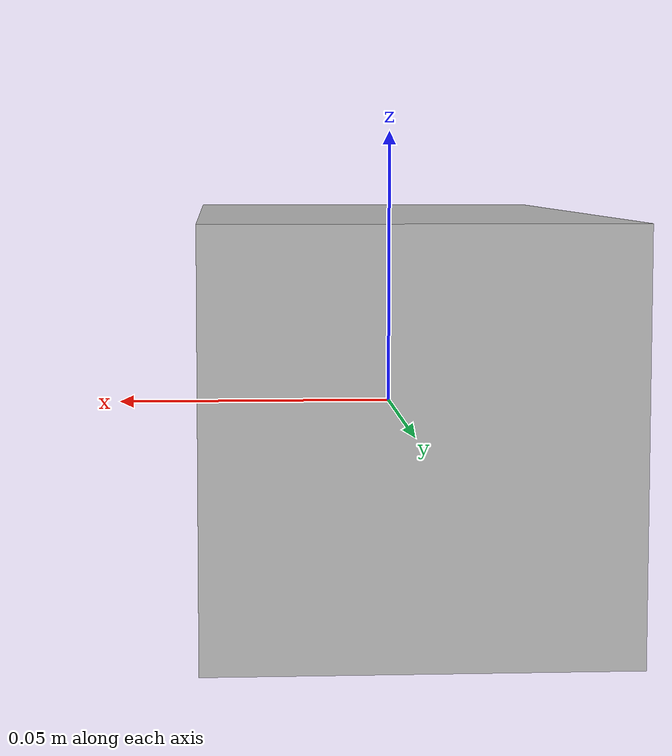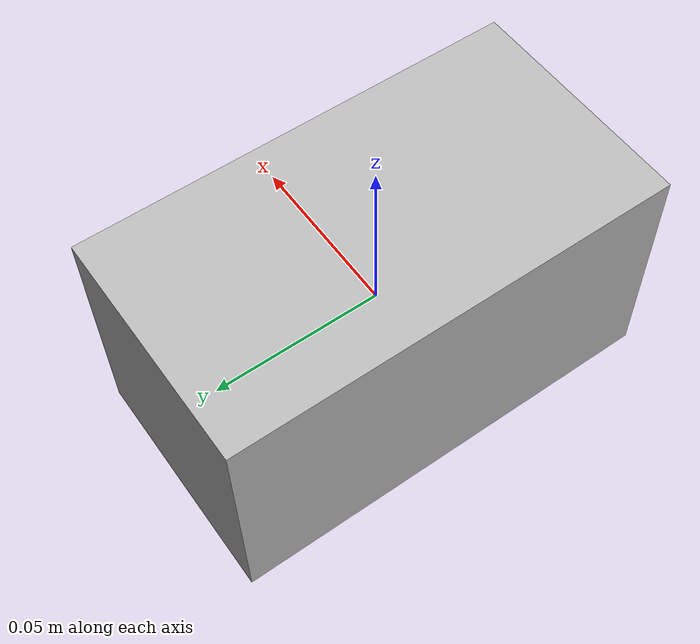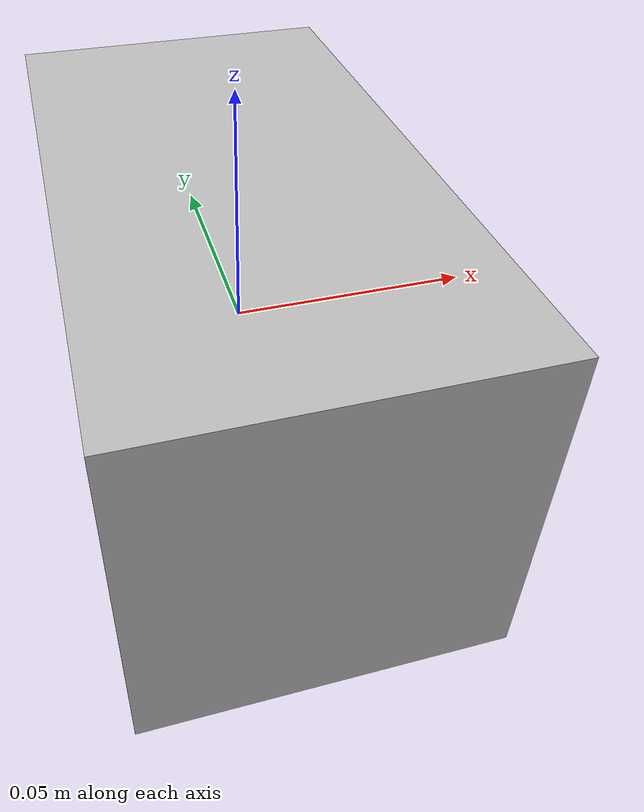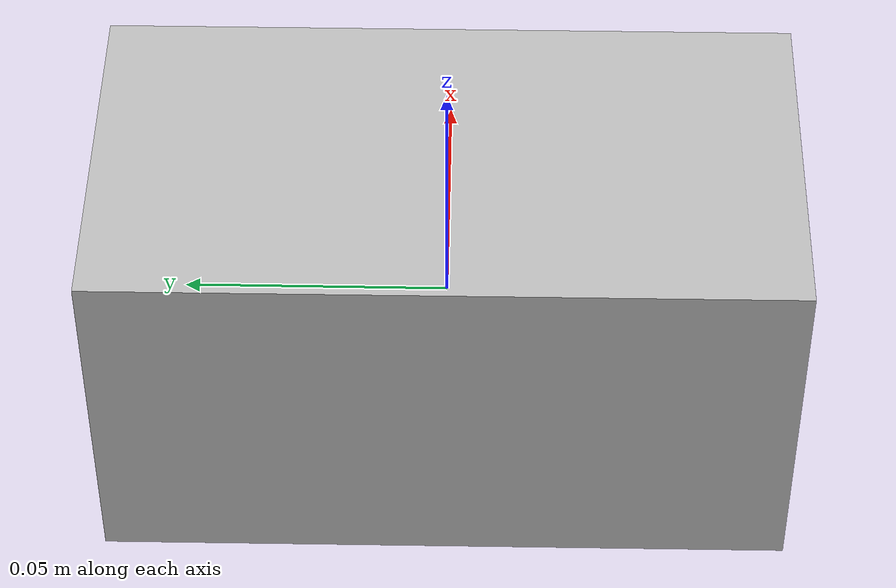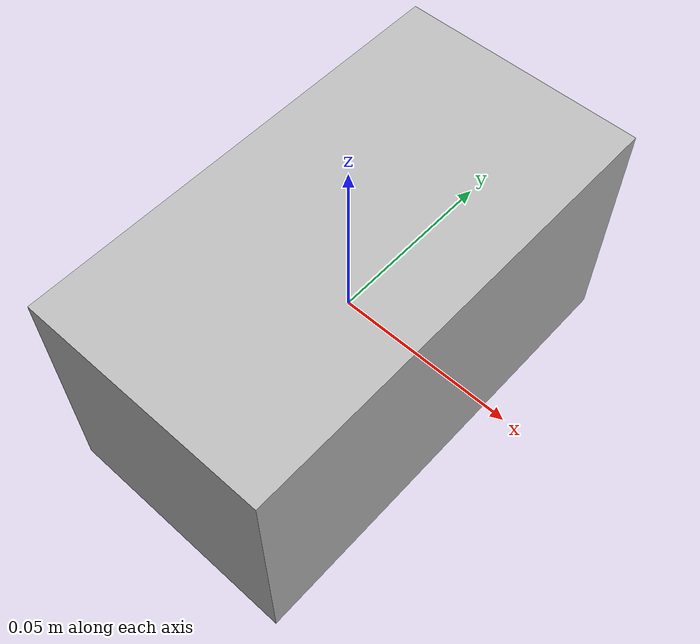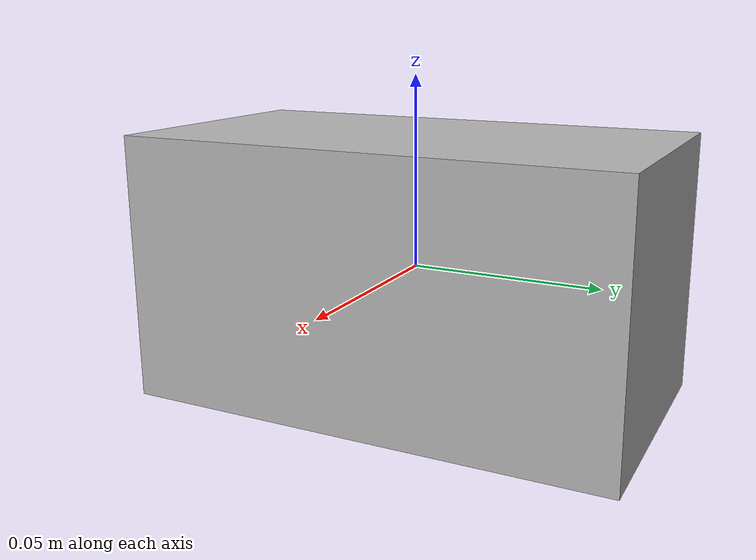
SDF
<?xml version='1.0'?>
<sdf version='1.6'>
  <model name='AH_thee_bosvruchten_tag36_11_00047'>
    <static>0</static>
    <link name='link_0'>

      <inertial>
        <mass>0.1</mass>
        <inertia>
          <ixx>1.4e-03</ixx>
          <ixy>0</ixy>
          <ixz>0</ixz>
          <iyy>1.4e-03</iyy>
          <iyz>0</iyz>
          <izz>2.8e-03</izz>
        </inertia>
      </inertial>

      <pose frame=''>-0 0 0 0 -0 0</pose>

      <visual name='visual'>
        <pose frame=''>0 0 0 0 -0 0</pose>
        <geometry>
          <mesh>
            <uri>model://AH_thee_bosvruchten/AH_thee_bosvruchten_tag36_11_00047/AH_thee_bosvruchten_tag36_11_00047.dae</uri>
            <scale>1 1 1</scale>
          </mesh>
        </geometry>
        <transparency>0</transparency>
        <cast_shadows>1</cast_shadows>
      </visual>

      <collision name='collision'>
        <laser_retro>0</laser_retro>
        <max_contacts>10</max_contacts>
        <pose frame=''>0 0 0 0 -0 0</pose>
        <geometry>
          <mesh>
            <uri>model://AH_thee_bosvruchten/AH_thee_bosvruchten_tag36_11_00047/AH_thee_bosvruchten_tag36_11_00047.dae</uri>
            <scale>1 1 1</scale>
          </mesh>
        </geometry>
        <surface>
          <friction>
            <ode>
              <mu>1</mu>
              <mu2>1</mu2>
              <fdir1>0 0 0</fdir1>
              <slip1>0</slip1>
              <slip2>0</slip2>
            </ode>
            <torsional>
              <coefficient>1</coefficient>
              <patch_radius>0</patch_radius>
              <surface_radius>0</surface_radius>
              <use_patch_radius>1</use_patch_radius>
              <ode>
                <slip>0</slip>
              </ode>
            </torsional>
          </friction>
          <bounce>
            <restitution_coefficient>0</restitution_coefficient>
            <threshold>1e+06</threshold>
          </bounce>
          <contact>
            <collide_without_contact>0</collide_without_contact>
            <collide_without_contact_bitmask>1</collide_without_contact_bitmask>
            <collide_bitmask>1</collide_bitmask>
            <ode>
              <soft_cfm>0</soft_cfm>
              <soft_erp>0.2</soft_erp>
              <kp>1e+13</kp>
              <kd>1</kd>
              <max_vel>0.01</max_vel>
              <min_depth>0</min_depth>
            </ode>
            <bullet>
              <split_impulse>1</split_impulse>
              <split_impulse_penetration_threshold>-0.01</split_impulse_penetration_threshold>
              <soft_cfm>0</soft_cfm>
              <soft_erp>0.2</soft_erp>
              <kp>1e+13</kp>
              <kd>1</kd>
            </bullet>
          </contact>
        </surface>
      </collision>

    </link>
  </model>
</sdf>
